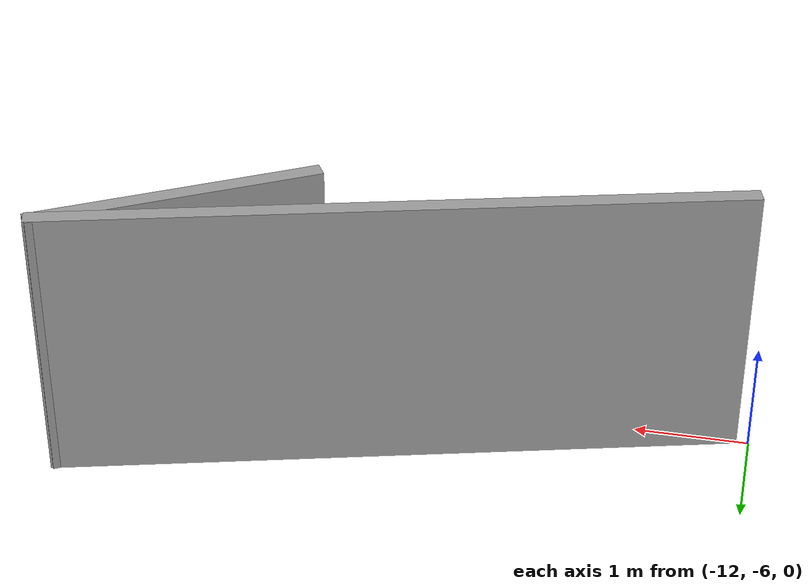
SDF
<?xml version='1.0'?>
<sdf version='1.7'>
  <model name='Untitled'>
    <pose>-5.94868 -3.06547 0 0 -0 0</pose>
    <link name='Wall_0'>
      <collision name='Wall_0_Collision'>
        <geometry>
          <box>
            <size>2.5 0.15 2.5</size>
          </box>
        </geometry>
        <pose>0 0 1.25 0 -0 0</pose>
      </collision>
      <visual name='Wall_0_Visual'>
        <pose>0 0 1.25 0 -0 0</pose>
        <geometry>
          <box>
            <size>2.5 0.15 2.5</size>
          </box>
        </geometry>
        <material>
          <script>
            <uri>file://media/materials/scripts/gazebo.material</uri>
            <name>Gazebo/Grey</name>
          </script>
          <ambient>1 1 1 1</ambient>
        </material>
        <meta>
          <layer>0</layer>
        </meta>
      </visual>
      <pose>-1.22374 -2.04703 0 0 -0 0.523599</pose>
    </link>
    <link name='Wall_1'>
      <collision name='Wall_1_Collision'>
        <geometry>
          <box>
            <size>6 0.15 2.5</size>
          </box>
        </geometry>
        <pose>0 0 1.25 0 -0 0</pose>
      </collision>
      <visual name='Wall_1_Visual'>
        <pose>0 0 1.25 0 -0 0</pose>
        <geometry>
          <box>
            <size>6 0.15 2.5</size>
          </box>
        </geometry>
        <material>
          <script>
            <uri>file://media/materials/scripts/gazebo.material</uri>
            <name>Gazebo/Grey</name>
          </script>
          <ambient>1 1 1 1</ambient>
        </material>
        <meta>
          <layer>0</layer>
        </meta>
      </visual>
      <pose>-3.03149 -2.21657 0 0 -0 -2.87979</pose>
    </link>
    <static>1</static>
  </model>
</sdf>
